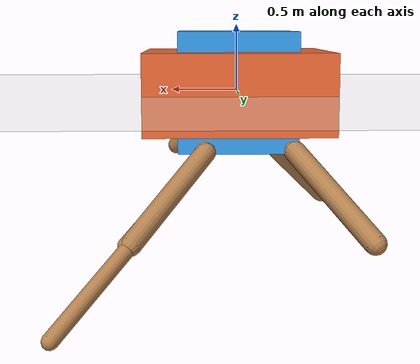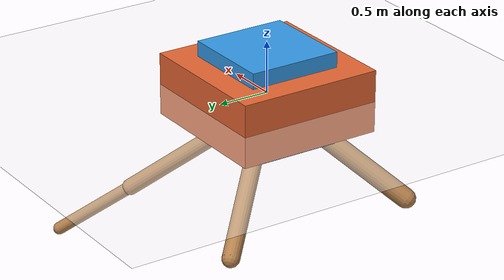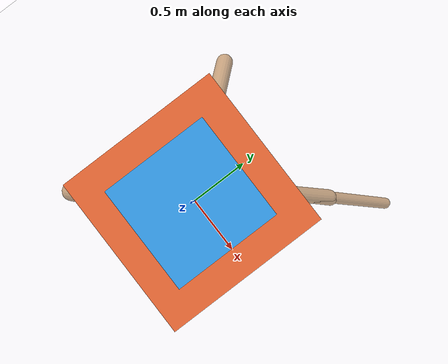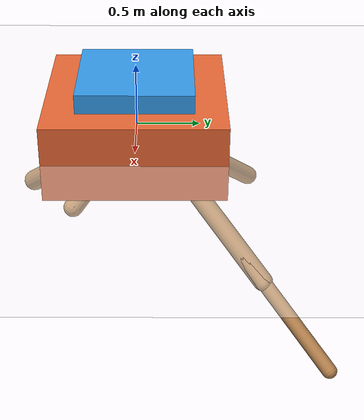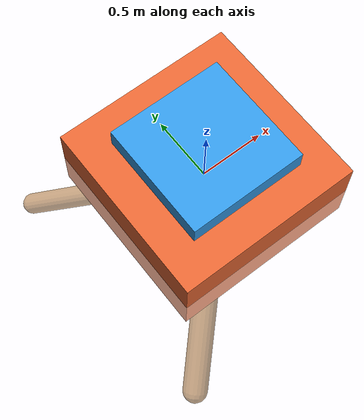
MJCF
<mujoco model="dex-gripper">
  <asset>
    <texture name="skybox" type="skybox" builtin="gradient" rgb1=".2 .3 .4" rgb2="0 0 0" width="800" height="800" mark="random" markrgb="1 1 1"/>
    <texture name="grid" type="2d" builtin="checker" rgb1=".2 .1 .2" rgb2=".3 .2 .3" width="300" height="300" mark="edge" markrgb=".3 .2 .3"/>
    <material name="grid" texture="grid" texrepeat="1 1" texuniform="true" reflectance=".2"/>
    <material name="self" rgba=".7 .5 .3 1"/>
  </asset>
  <visual>
    <headlight ambient=".4 .4 .4" diffuse=".8 .8 .8" specular="0.1 0.1 0.1"/>
    <map znear=".001"/>
    <quality shadowsize="16384"/>
  </visual>
  <compiler angle="degree" coordinate="global" inertiafromgeom="true"/>
  <option integrator="RK4" timestep="0.01"/>
  <default>
    <joint armature="1" damping="1" limited="true"/>
    <geom conaffinity="0" condim="3" density="5.0" friction="1 0.5 0.5" margin="0.01" rgba=".7 .5 .3 1"/>
  </default>
  <worldbody>
    <light cutoff="100" diffuse="1 1 1" dir="0.3 0 -1.3" directional="true" exponent="1" pos="-30 0 130" specular=".1 .1 .1"/>
    <geom conaffinity="1" condim="3" name="floor" pos="0 0 0" rgba="1 1 1 1" size="200 200 .125" type="plane" material="grid"/>
    <body name="0" pos="0 0 0" gravcomp="1">
      <camera name="track" mode="fixed" pos="0 10 5" quat="0 0 0.547 0.892"/>
      <geom pos="0 0 0" size="0.306887 0.213594 0.201046" type="ellipsoid"/>
      <joint name="root_x" type="slide" axis="1 0 0" pos="0 0 0" limited="false" armature="0" damping="0"/>
      <joint name="root_y" type="slide" axis="0 1 0" pos="0 0 0" limited="false" armature="0" damping="0"/>
      <joint name="root_z" type="slide" axis="0 0 1" pos="0 0 0" limited="false" armature="0" damping="0"/>
      <body name="1" pos="0 0 0" gravcomp="1">
        <joint axis="-0.707107 0.707107 0" name="1_joint" pos="0 0 0" range="-30 30" type="hinge" damping="0"/>
        <geom fromto="-0.042566 -0.070006 0.07002 0.303956 0.499896 -0.5" size="0.067819 0.067819 0.067819" type="capsule"/>
        <body name="11" pos="0.303956 0.499896 -0.5" gravcomp="1">
          <joint axis="-0.707107 0.707107 0" name="11_joint" pos="0.303956 0.499896 -0.5" range="-30 30" type="hinge" damping="0"/>
          <geom fromto="0.244262 0.435982 -0.435819 0.769006 0.997821 -1" size="0.07712 0.07712 0.07712" type="capsule"/>
          <body name="111" pos="0.769006 0.997821 -1" gravcomp="1">
            <joint axis="-0.707107 0.707107 0" name="111_joint" pos="0.769006 0.997821 -1" range="-30 30" type="hinge" damping="0"/>
            <geom fromto="0.702327 0.92914 -0.93123 1.253802 1.497177 -1.5" size="0.058582 0.058582 0.058582" type="capsule"/>
          </body>
        </body>
        <body name="21" pos="0.303956 0.499896 -0.5" gravcomp="1">
          <joint axis="-0.707107 0.707107 0" name="21_joint" pos="0.303956 0.499896 -0.5" range="-30 30" type="hinge" damping="0"/>
          <geom fromto="0.221459 0.417213 -0.416832 0.799923 0.99698 -1" size="0.058551 0.058551 0.058551" type="capsule"/>
        </body>
      </body>
      <body name="2" pos="0 0 0" gravcomp="1">
        <joint axis="-0.707107 -0.707107 0" name="2_joint" pos="0 0 0" range="-30 30" type="hinge" damping="0"/>
        <geom fromto="0.0556 -0.057907 0.058096 -0.478517 0.498379 -0.5" size="0.064845 0.064845 0.064845" type="capsule"/>
        <body name="12" pos="-0.478517 0.498379 -0.5" gravcomp="1">
          <joint axis="-0.707107 -0.707107 0" name="12_joint" pos="-0.478517 0.498379 -0.5" range="-30 30" type="hinge" damping="0"/>
          <geom fromto="-0.417767 0.430451 -0.431644 -0.922886 0.995243 -1" size="0.081953 0.081953 0.081953" type="capsule"/>
        </body>
      </body>
      <body name="3" pos="0 0 0" gravcomp="1">
        <joint axis="0.707107 -0.707107 0" name="3_joint" pos="0 0 0" range="-30 30" type="hinge" damping="0"/>
        <geom fromto="0.038195 0.054668 0.054765 -0.348716 -0.499119 -0.5" size="0.077613 0.077613 0.077613" type="capsule"/>
        <body name="13" pos="-0.348716 -0.499119 -0.5" gravcomp="1">
          <joint axis="0.707107 -0.707107 0" name="13_joint" pos="-0.348716 -0.499119 -0.5" range="-30 30" type="hinge" damping="0"/>
          <geom fromto="-0.284678 -0.433475 -0.4332 -0.828038 -0.990473 -1" size="0.094153 0.094153 0.094153" type="capsule"/>
        </body>
        <body name="23" pos="-0.348716 -0.499119 -0.5" gravcomp="1">
          <joint axis="0.707107 -0.707107 0" name="23_joint" pos="-0.348716 -0.499119 -0.5" range="-30 30" type="hinge" damping="0"/>
          <geom fromto="-0.276711 -0.427074 -0.427675 -0.8465 -0.997181 -1" size="0.073641 0.073641 0.073641" type="capsule"/>
        </body>
      </body>
      <body name="4" pos="0 0 0" gravcomp="1">
        <joint axis="0.707107 0.707107 0" name="4_joint" pos="0 0 0" range="-30 30" type="hinge" damping="0"/>
        <geom fromto="-0.076057 0.080015 0.080619 0.471711 -0.496257 -0.5" size="0.07566 0.07566 0.07566" type="capsule"/>
      </body>
    </body>
    <body name="box_1" pos="0 0 0">
      <freejoint name="box_1_joint"/>
      <geom name="box_1" type="box" size="0.45 0.45 0.45" rgba="0.2 0.6 0.9 1.0" contype="1" conaffinity="1" density="10" friction="2.5 0.1 0.05"/>
    </body>
    <body name="box_2" pos="3.0 0 0.425">
      <freejoint name="box_2_joint"/>
      <geom name="box_2" type="box" size="0.7 0.7 0.3" rgba="0.9 0.4 0.2 1.0" contype="1" conaffinity="1" density="10" friction="2.5 0.1 0.05"/>
    </body>
  </worldbody>
  <actuator>
    <motor name="root_x_motor" joint="root_x" gear="50" ctrllimited="true" ctrlrange="-1 1"/>
    <motor name="root_y_motor" joint="root_y" gear="50" ctrllimited="true" ctrlrange="-1 1"/>
    <motor name="root_z_motor" joint="root_z" gear="50" ctrllimited="true" ctrlrange="-1 1"/>
    <motor ctrllimited="true" ctrlrange="-1.0 1.0" joint="1_joint" gear="25.651303" name="1_joint"/>
    <motor ctrllimited="true" ctrlrange="-1.0 1.0" joint="2_joint" gear="26.165085" name="2_joint"/>
    <motor ctrllimited="true" ctrlrange="-1.0 1.0" joint="3_joint" gear="21.403717" name="3_joint"/>
    <motor ctrllimited="true" ctrlrange="-1.0 1.0" joint="4_joint" gear="55.406072" name="4_joint"/>
    <motor ctrllimited="true" ctrlrange="-1.0 1.0" joint="11_joint" gear="57.41931" name="11_joint"/>
    <motor ctrllimited="true" ctrlrange="-1.0 1.0" joint="12_joint" gear="52.92245" name="12_joint"/>
    <motor ctrllimited="true" ctrlrange="-1.0 1.0" joint="13_joint" gear="20.306125" name="13_joint"/>
    <motor ctrllimited="true" ctrlrange="-1.0 1.0" joint="21_joint" gear="68.565996" name="21_joint"/>
    <motor ctrllimited="true" ctrlrange="-1.0 1.0" joint="23_joint" gear="20.4268" name="23_joint"/>
    <motor ctrllimited="true" ctrlrange="-1.0 1.0" joint="111_joint" gear="80.280543" name="111_joint"/>
  </actuator>
</mujoco>
